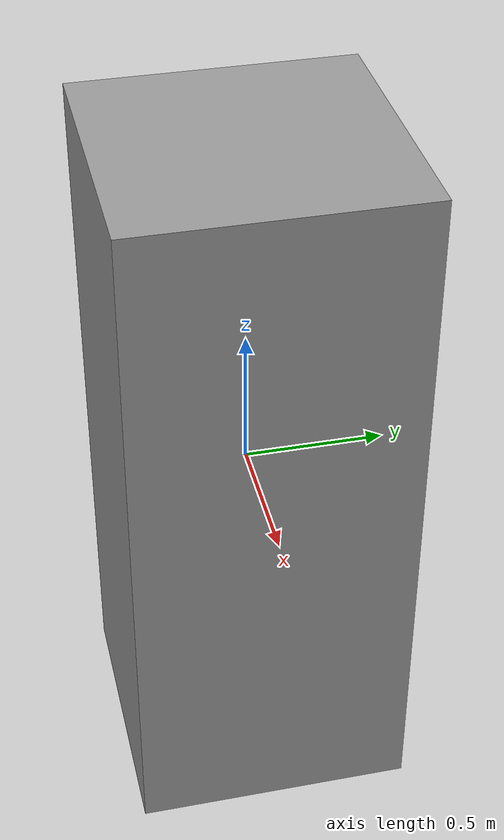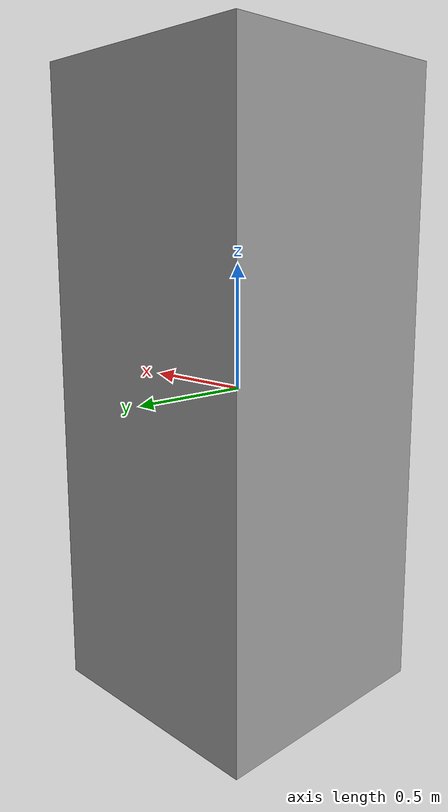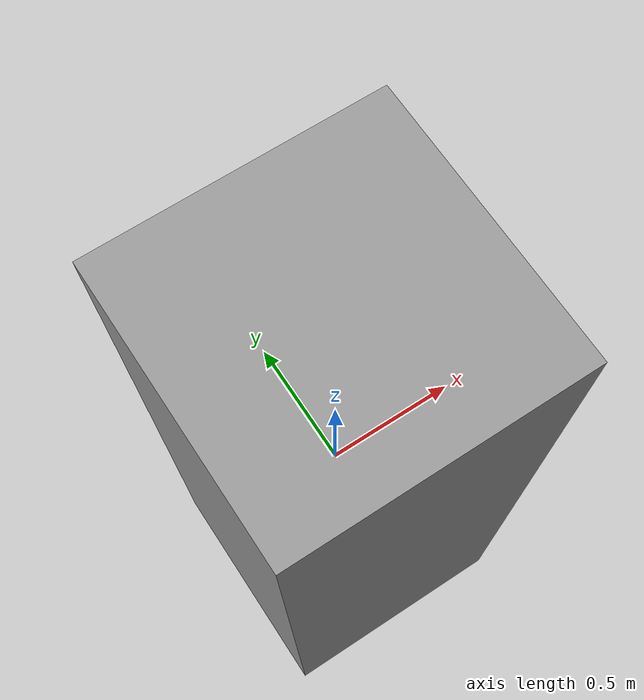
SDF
<?xml version='1.0'?>
<sdf version='1.7'>
  <model name='apriltag2'>
    <pose>0 0 0 0 0 0</pose>
    <static>1</static>

    <link name='Wall_0'>
      <collision name='Wall_0_Collision'>
        <geometry>
          <box>
            <size>1 1 2.5</size>
          </box>
        </geometry>
      </collision>
      <visual name='Wall_0_Visual'>
        <geometry>
          <box>
            <size>1 1 2.5</size>
          </box>
        </geometry>
        <material>
          <script>
            <uri>file://media/materials/scripts/gazebo.material</uri>
            <name>Gazebo/Grey</name>
          </script>
        </material>
      </visual>
    </link>

    <link name='Wall_3'>
      <collision name='Wall_3_Collision'>
        <geometry>
          <box>
            <size>0.9 0.02 0.9</size>
          </box>
        </geometry>
      </collision>
      <visual name='Wall_3_Visual'>
        <geometry>
          <box>
            <size>0.9 0.02 0.9</size>
          </box>
        </geometry>
        <material>
          <script>
            <uri>model://apriltag2/materials/scripts</uri>
            <uri>model://apriltag2/materials/textures/</uri>
            <name>AprilTag/Two</name>
          </script>
        </material>
      </visual>
    </link>

  </model>
</sdf>
